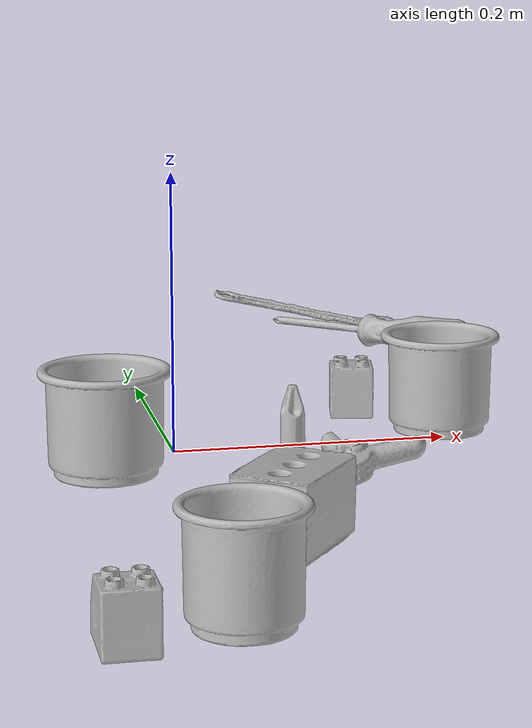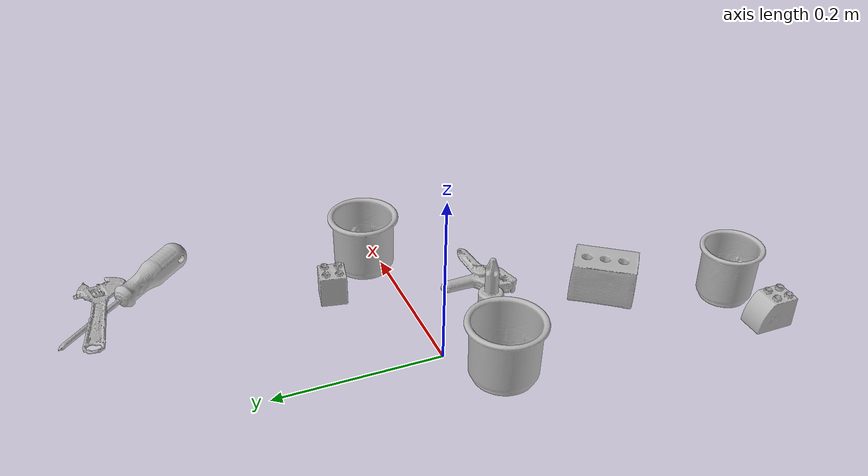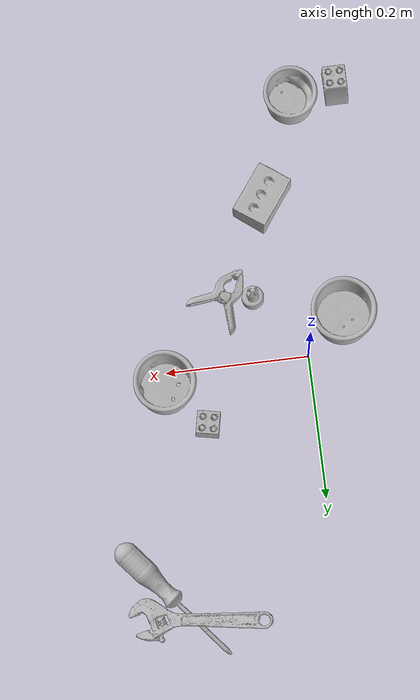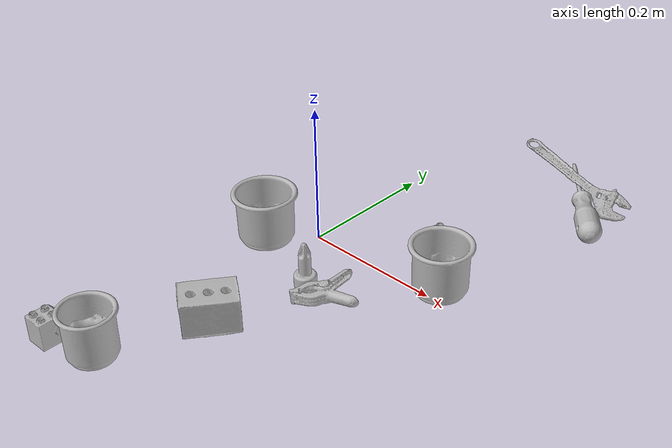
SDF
<sdf version="1.4">
  <world name="default">
    <light name="light1" type="point">
      <pose>0 0 1 0 0 0</pose>
      <diffuse>3 3 3 1</diffuse>
      <specular>3 3 3 1</specular>
    </light>
    <light name="light2" type="point">
      <pose>0 0.5 2 0 0 0</pose>
      <diffuse>1 1 1 1</diffuse>
      <specular>1 1 1 1</specular>
    </light>
    <light name="light3" type="point">
      <pose>0 0.5 2 0 0 0</pose>
      <diffuse>3 3 3 1</diffuse>
      <specular>3 3 3 1</specular>
    </light>
    <scene>
      <ambient>0.7 0.7 0.7</ambient>
    </scene>
    <model name="cup1">
      <link name="link_cup1">
        <collision name="default">
          <geometry>
            <mesh>
              <uri>model://h_cups/collision_meshes/collision.obj</uri>
              <scale>1.0 1.0 1.0</scale>
            </mesh>
          </geometry>
          <surface>
            <friction>
              <ode>
                <mu>0.5</mu>
                <mu2>0.5</mu2>
              </ode>
            </friction>
          <contact>
        <ode>
            <max_vel>0</max_vel>
            <min_depth>0.0001</min_depth>
            <kp>1e8</kp>
        </ode>
    </contact></surface>
        </collision>
        <visual name="default">
          <geometry>
            <mesh>
              <uri>model://h_cups/visual_meshes/visual.dae</uri>
              <scale>1.0 1.0 1.0</scale>
            </mesh>
          </geometry>
        </visual>
        <inertial>
          <mass>0.09017354249954224</mass>
          <pose>-2.702734127524309e-05 0.00023018653155304492 -0.0018405391601845622 -0.024362361674121313 0.06545247408237653 0.12884890922354367</pose>
          <inertia>
            <ixx>0.00011645493</ixx>
            <iyy>0.000115065246</iyy>
            <izz>0.00012212929</izz>
            <ixy>0</ixy>
            <ixz>0</ixz>
            <iyz>0</iyz>
          </inertia>
        </inertial>
      </link>
      <pose>-0.054138001054525375 -0.04858900234103203 0.03775397315621376 0.00016901137792032147 -0.00035979388677171445 -1.1184818855011505</pose>
    </model>
    <model name="cup2">
      <link name="link_cup2">
        <collision name="default">
          <geometry>
            <mesh>
              <uri>model://g_cups/collision_meshes/collision.obj</uri>
              <scale>1.0 1.0 1.0</scale>
            </mesh>
          </geometry>
          <surface>
            <friction>
              <ode>
                <mu>0.5</mu>
                <mu2>0.5</mu2>
              </ode>
            </friction>
          <contact>
        <ode>
            <max_vel>0</max_vel>
            <min_depth>0.0001</min_depth>
            <kp>1e8</kp>
        </ode>
    </contact></surface>
        </collision>
        <visual name="default">
          <geometry>
            <mesh>
              <uri>model://g_cups/visual_meshes/visual.dae</uri>
              <scale>1.0 1.0 1.0</scale>
            </mesh>
          </geometry>
        </visual>
        <inertial>
          <mass>0.07892031967639923</mass>
          <pose>-0.0007946275873109698 -4.206384619465098e-05 -0.0021329368464648724 -0.21381953376637775 -0.31410844314425407 0.31119468358147234</pose>
          <inertia>
            <ixx>9.211769e-05</ixx>
            <iyy>9.180432e-05</iyy>
            <izz>9.541806e-05</izz>
            <ixy>0</ixy>
            <ixz>0</ixz>
            <iyz>0</iyz>
          </inertia>
        </inertial>
      </link>
      <pose>0.20280539989471436 0.021583735942840576 0.03720299154520035 -2.062710196557785e-07 1.1846416261375858e-08 -2.131816121061336</pose>
    </model>
    <model name="cup3">
      <link name="link_cup3">
        <collision name="default">
          <geometry>
            <mesh>
              <uri>model://e_cups/collision_meshes/collision.obj</uri>
              <scale>1.0 1.0 1.0</scale>
            </mesh>
          </geometry>
          <surface>
            <friction>
              <ode>
                <mu>0.5</mu>
                <mu2>0.5</mu2>
              </ode>
            </friction>
          <contact>
        <ode>
            <max_vel>0</max_vel>
            <min_depth>0.0001</min_depth>
            <kp>1e8</kp>
        </ode>
    </contact></surface>
        </collision>
        <visual name="default">
          <geometry>
            <mesh>
              <uri>model://e_cups/visual_meshes/visual.dae</uri>
              <scale>1.0 1.0 1.0</scale>
            </mesh>
          </geometry>
        </visual>
        <inertial>
          <mass>0.08743876963853836</mass>
          <pose>0.0011355745373293757 0.0028797851409763098 -0.0038829741533845663 0.6952398618358687 0.08767880823198544 -0.5235243888876825</pose>
          <inertia>
            <ixx>7.709911e-05</ixx>
            <iyy>8.05796e-05</iyy>
            <izz>7.3715666e-05</izz>
            <ixy>0</ixy>
            <ixz>0</ixz>
            <iyz>0</iyz>
          </inertia>
        </inertial>
      </link>
      <pose>-0.018443182110786438 -0.36186206340789795 0.035599879920482635 6.658043521612164e-05 -8.424089321230762e-05 2.0885435662678096</pose>
    </model>
    <model name="toy1">
      <link name="link_toy1">
        <collision name="default">
          <geometry>
            <mesh>
              <uri>model://d_lego_duplo/collision_meshes/collision.obj</uri>
              <scale>1.0 1.0 1.0</scale>
            </mesh>
          </geometry>
          <surface>
            <friction>
              <ode>
                <mu>0.5</mu>
                <mu2>0.5</mu2>
              </ode>
            </friction>
          <contact>
        <ode>
            <max_vel>0</max_vel>
            <min_depth>0.0001</min_depth>
            <kp>1e8</kp>
        </ode>
    </contact></surface>
        </collision>
        <visual name="default">
          <geometry>
            <mesh>
              <uri>model://d_lego_duplo/visual_meshes/visual.dae</uri>
              <scale>1.0 1.0 1.0</scale>
            </mesh>
          </geometry>
        </visual>
        <inertial>
          <mass>0.04292278364300728</mass>
          <pose>0.002830562647432089 0.00016366151976399124 0.0008589805802330375 0.08010895821025366 -0.3835521883517419 0.0010296961053417666</pose>
          <inertia>
            <ixx>8.309218e-06</ixx>
            <iyy>1.1793034e-05</iyy>
            <izz>1.1372727e-05</izz>
            <ixy>0</ixy>
            <ixz>0</ixz>
            <iyz>0</iyz>
          </inertia>
        </inertial>
      </link>
      <pose>-0.08373419940471649 -0.37566256523132324 0.021739771589636803 -3.63667581611404e-05 -2.9051493630869735e-05 -1.5607832861286222</pose>
    </model>
    <model name="toy2">
      <link name="link_toy2">
        <collision name="default">
          <geometry>
            <mesh>
              <uri>model://foam_brick/collision_meshes/collision.obj</uri>
              <scale>1.0 1.0 1.0</scale>
            </mesh>
          </geometry>
          <surface>
            <friction>
              <ode>
                <mu>0.5</mu>
                <mu2>0.5</mu2>
              </ode>
            </friction>
          <contact>
        <ode>
            <max_vel>0</max_vel>
            <min_depth>0.0001</min_depth>
            <kp>1e8</kp>
        </ode>
    </contact></surface>
        </collision>
        <visual name="default">
          <geometry>
            <mesh>
              <uri>model://foam_brick/visual_meshes/visual.dae</uri>
              <scale>1.0 1.0 1.0</scale>
            </mesh>
          </geometry>
        </visual>
        <inertial>
          <mass>0.21218973398208618</mass>
          <pose>-0.0002522472059354186 0.00034584320383146405 -0.0002532101352699101 -0.2940188212014215 0.017274433063530492 -0.0007449861184219897</pose>
          <inertia>
            <ixx>9.268843e-05</ixx>
            <iyy>0.00014798183</iyy>
            <izz>0.00014986254</izz>
            <ixy>0</ixy>
            <ixz>0</ixz>
            <iyz>0</iyz>
          </inertia>
        </inertial>
      </link>
      <pose>0.03834264352917671 -0.22632040083408356 0.025922786444425583 0.013417018109841286 0.004152454923851467 0.9388305018310766</pose>
    </model>
    <model name="toy3">
      <link name="link_toy3">
        <collision name="default">
          <geometry>
            <mesh>
              <uri>model://f_lego_duplo/collision_meshes/collision.obj</uri>
              <scale>1.0 1.0 1.0</scale>
            </mesh>
          </geometry>
          <surface>
            <friction>
              <ode>
                <mu>0.5</mu>
                <mu2>0.5</mu2>
              </ode>
            </friction>
          <contact>
        <ode>
            <max_vel>0</max_vel>
            <min_depth>0.0001</min_depth>
            <kp>1e8</kp>
        </ode>
    </contact></surface>
        </collision>
        <visual name="default">
          <geometry>
            <mesh>
              <uri>model://f_lego_duplo/visual_meshes/visual.dae</uri>
              <scale>1.0 1.0 1.0</scale>
            </mesh>
          </geometry>
        </visual>
        <inertial>
          <mass>0.024021470919251442</mass>
          <pose>2.3694197807344608e-05 0.00013393140397965908 0.0018837875686585903 0.02983869554967358 -0.014424868856459862 -0.6756716113514201</pose>
          <inertia>
            <ixx>5.075869e-06</ixx>
            <iyy>5.1210886e-06</iyy>
            <izz>4.4060694e-06</izz>
            <ixy>0</ixy>
            <ixz>0</ixz>
            <iyz>0</iyz>
          </inertia>
        </inertial>
      </link>
      <pose>0.15020938217639923 0.08019323647022247 0.021871013566851616 -4.940670166493049e-07 2.443820294035645e-07 -0.19779204140783715</pose>
    </model>
    <model name="toy4">
      <link name="link_toy4">
        <collision name="default">
          <geometry>
            <mesh>
              <uri>model://d_toy_airplane/collision_meshes/collision.obj</uri>
              <scale>1.0 1.0 1.0</scale>
            </mesh>
          </geometry>
          <surface>
            <friction>
              <ode>
                <mu>0.5</mu>
                <mu2>0.5</mu2>
              </ode>
            </friction>
          <contact>
        <ode>
            <max_vel>0</max_vel>
            <min_depth>0.0001</min_depth>
            <kp>1e8</kp>
        </ode>
    </contact></surface>
        </collision>
        <visual name="default">
          <geometry>
            <mesh>
              <uri>model://d_toy_airplane/visual_meshes/visual.dae</uri>
              <scale>1.0 1.0 1.0</scale>
            </mesh>
          </geometry>
        </visual>
        <inertial>
          <mass>0.024586454033851624</mass>
          <pose>9.410288475919515e-05 -5.809331560158171e-05 -0.011728096753358841 0.0002662237897190017 0.004679022855495211 0.5193045098973154</pose>
          <inertia>
            <ixx>7.370539e-06</ixx>
            <iyy>7.376099e-06</iyy>
            <izz>2.2252145e-06</izz>
            <ixy>0</ixy>
            <ixz>0</ixz>
            <iyz>0</iyz>
          </inertia>
        </inertial>
      </link>
      <pose>0.06707237660884857 -0.09069342166185379 0.03333931788802147 0.00022265707413529897 -2.4681478882603527e-05 -1.498957167046334</pose>
    </model>
    <model name="hardware1">
      <link name="link_hardware1">
        <collision name="default">
          <geometry>
            <mesh>
              <uri>model://phillips_screwdriver/collision_meshes/collision.obj</uri>
              <scale>1.0 1.0 1.0</scale>
            </mesh>
          </geometry>
          <surface>
            <friction>
              <ode>
                <mu>0.5</mu>
                <mu2>0.5</mu2>
              </ode>
            </friction>
          <contact>
        <ode>
            <max_vel>0</max_vel>
            <min_depth>0.0001</min_depth>
            <kp>1e8</kp>
        </ode>
    </contact></surface>
        </collision>
        <visual name="default">
          <geometry>
            <mesh>
              <uri>model://phillips_screwdriver/visual_meshes/visual.dae</uri>
              <scale>1.0 1.0 1.0</scale>
            </mesh>
          </geometry>
        </visual>
        <inertial>
          <mass>0.10962587594985962</mass>
          <pose>-0.04777182266116142 0.0010362300090491772 -0.00045555492397397757 -0.1572763288958183 0.005850995451121224 -0.002156747064170485</pose>
          <inertia>
            <ixx>1.2879916e-05</ixx>
            <iyy>0.00016149164</iyy>
            <izz>0.00016162884</izz>
            <ixy>0</ixy>
            <ixz>0</ixz>
            <iyz>0</iyz>
          </inertia>
        </inertial>
      </link>
      <pose>0.22751951217651367 0.3153481185436249 0.015409637242555618 0.06558059928273377 0.037567863282167525 2.264787099838704</pose>
    </model>
    <model name="hardware2">
      <link name="link_hardware2">
        <collision name="default">
          <geometry>
            <mesh>
              <uri>model://adjustable_wrench/collision_meshes/collision.obj</uri>
              <scale>1.0 1.0 1.0</scale>
            </mesh>
          </geometry>
          <surface>
            <friction>
              <ode>
                <mu>0.5</mu>
                <mu2>0.5</mu2>
              </ode>
            </friction>
          <contact>
        <ode>
            <max_vel>0</max_vel>
            <min_depth>0.0001</min_depth>
            <kp>1e8</kp>
        </ode>
    </contact></surface>
        </collision>
        <visual name="default">
          <geometry>
            <mesh>
              <uri>model://adjustable_wrench/visual_meshes/visual.dae</uri>
              <scale>1.0 1.0 1.0</scale>
            </mesh>
          </geometry>
        </visual>
        <inertial>
          <mass>0.02999398298561573</mass>
          <pose>0.03740980848670006 -0.002896887483075261 -0.001114922808483243 -0.014473357351062987 0.006656019865341655 -0.010954188906160397</pose>
          <inertia>
            <ixx>6.138701e-06</ixx>
            <iyy>7.184631e-05</iyy>
            <izz>7.765895e-05</izz>
            <ixy>0</ixy>
            <ixz>0</ixz>
            <iyz>0</iyz>
          </inertia>
        </inertial>
      </link>
      <pose>0.1969410479068756 0.35118618607521057 0.023074956610798836 0.01654837843742434 0.20381354988133102 -0.1590395341895217</pose>
    </model>
    <model name="hardware3">
      <link name="link_hardware3">
        <collision name="default">
          <geometry>
            <mesh>
              <uri>model://medium_clamp/collision_meshes/collision.obj</uri>
              <scale>1.0 1.0 1.0</scale>
            </mesh>
          </geometry>
          <surface>
            <friction>
              <ode>
                <mu>0.5</mu>
                <mu2>0.5</mu2>
              </ode>
            </friction>
          <contact>
        <ode>
            <max_vel>0</max_vel>
            <min_depth>0.0001</min_depth>
            <kp>1e8</kp>
        </ode>
    </contact></surface>
        </collision>
        <visual name="default">
          <geometry>
            <mesh>
              <uri>model://medium_clamp/visual_meshes/visual.dae</uri>
              <scale>1.0 1.0 1.0</scale>
            </mesh>
          </geometry>
        </visual>
        <inertial>
          <mass>0.038817502558231354</mass>
          <pose>0.005390993785113096 0.0003953237028326839 -0.0001222158462041989 -0.0012269117309439718 0.002584502422387493 0.03820772500943274</pose>
          <inertia>
            <ixx>1.05752815e-05</ixx>
            <iyy>1.539003e-05</iyy>
            <izz>2.3705257e-05</izz>
            <ixy>0</ixy>
            <ixz>0</ixz>
            <iyz>0</iyz>
          </inertia>
        </inertial>
      </link>
      <pose>0.10769704729318619 -0.0942903459072113 0.013533525168895721 0.07714138249993177 0.08543956630243303 -2.2599013773089833</pose>
    </model>
  <physics type="ode">
      <max_contacts>50</max_contacts>
      <ode>
        <solver>
          <type>quick</type>
          <iters>75</iters>
        </solver>
        <constraints>
          <contact_max_correcting_vel>0</contact_max_correcting_vel>
          <contact_surface_layer>0</contact_surface_layer>
        </constraints>
      </ode>
    </physics></world>
</sdf>
